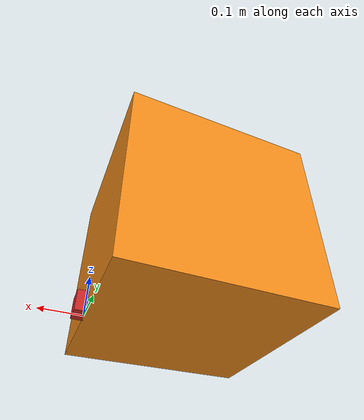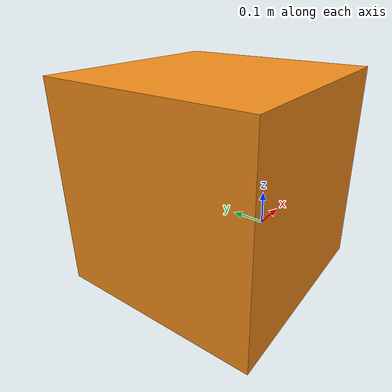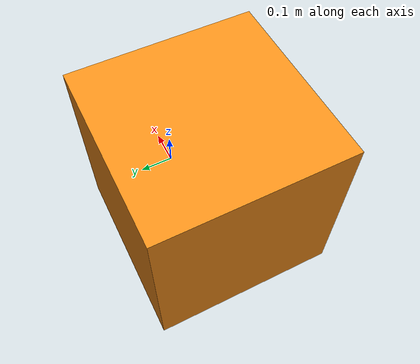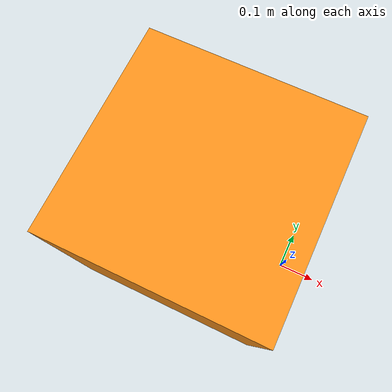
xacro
<?xml version="1.0"?>
<!-- Revolute-Revolute Manipulator -->
<robot name="simple_rgbd_line_cam" xmlns:xacro="http://www.ros.org/wiki/xacro">

  <!-- Constants for robot dimensions -->
  <xacro:property name="PI" value="3.1415926535897931"/>
  <xacro:property name="mass" value="1" /> <!-- arbitrary value for mass -->
  <xacro:property name="width" value="0.5" /> <!-- Square dimensions (widthxwidth) of beams -->
  <xacro:property name="height" value="0.5" /> <!-- Link 1 -->
  <xacro:property name="camera_link" value="0.05" /> <!-- Size of square 'camera' box -->
  <xacro:property name="axel_offset" value="0.05" /> <!-- Space btw top of beam and the each joint -->

  <!-- Import all Gazebo-customization elements, including Gazebo colors -->
  <xacro:include filename="$(find mrfmap_ros)/urdf/simple_rgbd_line_cam.gazebo" />
  <!-- Import Rviz colors -->
  <xacro:include filename="$(find mrfmap_ros)/urdf/materials.xacro" />

  <!-- Used for fixing robot to Gazebo 'base_link' -->

  <!-- Base Link -->
  <link name="link1">
    <static>true</static>
    <collision>
      <origin xyz="${-width/2} 0 ${height/2}" rpy="0 0 0"/>
      <geometry>
	<box size="${width} ${width} ${height}"/>
      </geometry>
    </collision>

    <visual>
      <origin xyz="${-width/2} 0 ${height/2}" rpy="0 0 0"/>
      <geometry>
	<box size="${width} ${width} ${height}"/>
      </geometry>
      <material name="orange"/>
    </visual>

    <inertial>
      <origin xyz="${-width/2} 0 ${height/2}" rpy="0 0 0"/>
      <mass value="${mass}"/>
      <inertia
	  ixx="${mass / 12.0 * (width*width + height*height)}" ixy="0.0" ixz="0.0"
	  iyy="${mass / 12.0 * (height*height + width*width)}" iyz="0.0"
	  izz="${mass / 12.0 * (width*width + width*width)}"/>
    </inertial>
  </link>

  <joint name="camera_joint" type="fixed">
    <axis xyz="0 1 0" />
    <origin xyz="0 0 0" rpy="0 0 0"/>
    <parent link="link1"/>
    <child link="camera_link"/>
  </joint>

  <!-- Camera -->
  <link name="camera_link">
    <collision>
      <origin xyz="0 0 ${camera_link/2}" rpy="0 0 0"/>
      <geometry>
	       <box size="${camera_link} ${camera_link} ${camera_link}"/>
      </geometry>
    </collision>

    <visual>
      <origin xyz="0 0 ${camera_link/2}" rpy="0 0 0"/>
      <geometry>
	       <box size="${camera_link} ${camera_link} ${camera_link}"/>
      </geometry>
      <material name="red"/>
    </visual>

    <inertial>
      <mass value="1e-5" />
      <origin xyz="0 0 0" rpy="0 0 0"/>
      <inertia ixx="1e-6" ixy="0" ixz="0" iyy="1e-6" iyz="0" izz="1e-6" />
    </inertial>
  </link>

  <!-- generate an optical frame http://www.ros.org/reps/rep-0103.html#suffix-frames
      so that ros and opencv can operate on the camera frame correctly -->
  <joint name="camera_optical_joint" type="fixed">
    <!-- these values have to be these values otherwise the gazebo camera image
        won't be aligned properly with the frame it is supposedly originating from -->
    <origin xyz="0 0 0" rpy="${-pi/2} 0 ${-pi/2}"/>
    <parent link="camera_link"/>
    <child link="camera_link_optical"/>
  </joint>

  <link name="camera_link_optical">
  </link>

</robot>
